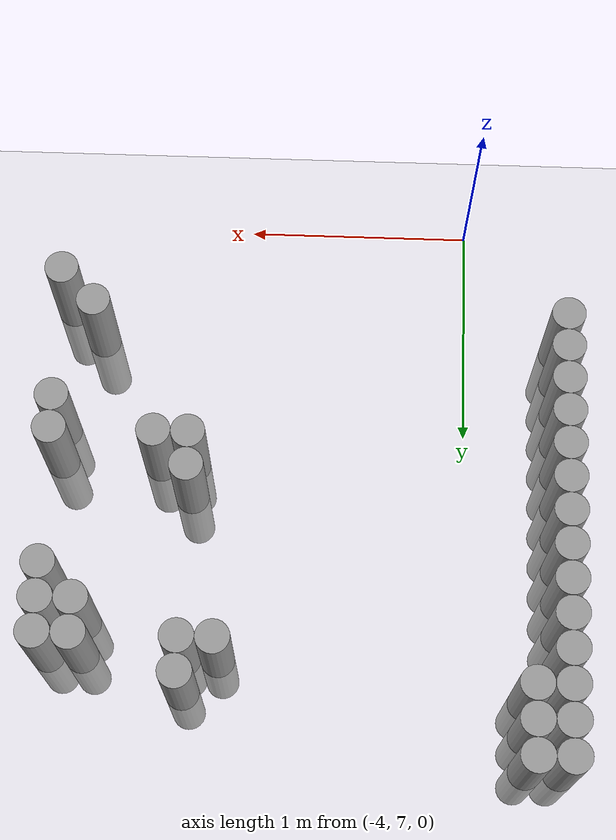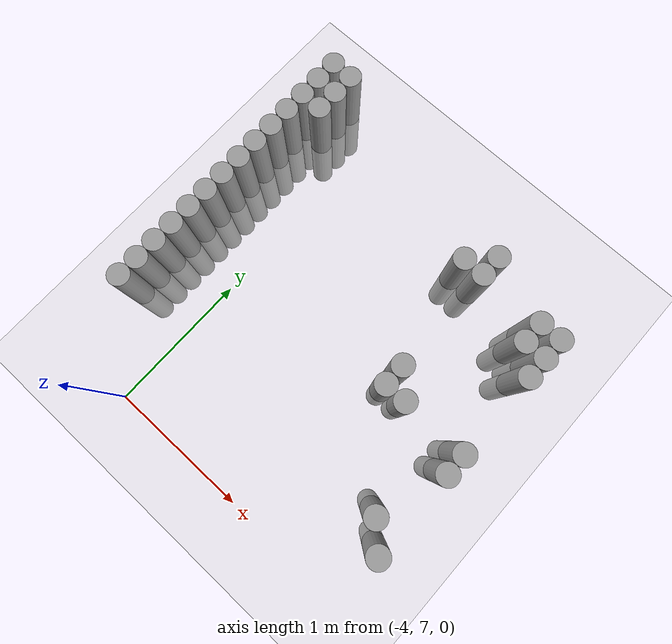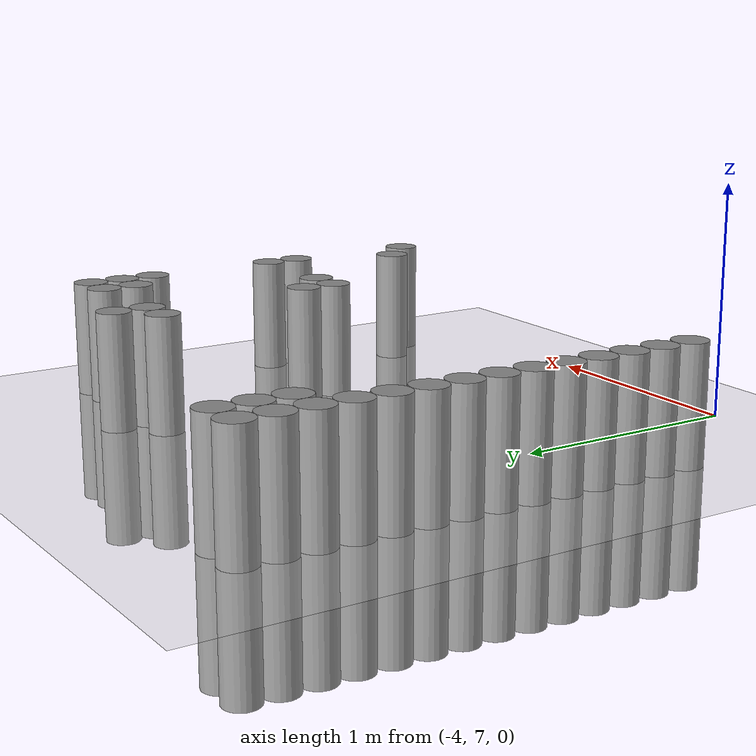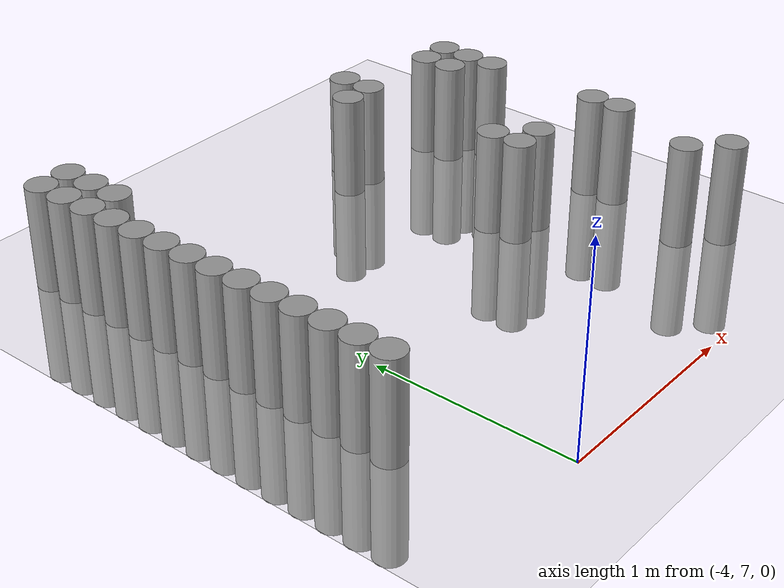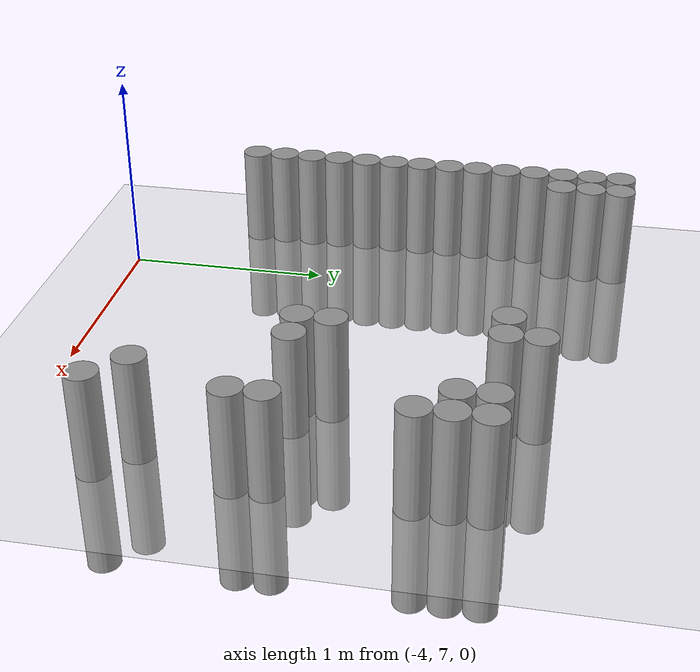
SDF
<sdf version="1.6">
 <world name="default">
  <model name="ground_plane">
   <static>1</static>
   <static>1</static>
   <link name="link">
    <collision name="collision">
     <geometry><plane><normal>0 0 1</normal><size>100 100</size></plane></geometry>
     <surface><friction><ode><mu>100</mu><mu2>50</mu2></ode></friction></surface>
    </collision>
    <visual name="visual">
     <cast_shadows>0</cast_shadows>
     <geometry><plane><normal>0 0 1</normal><size>100 100</size></plane></geometry>
     <material>
      <script><uri>file://media/materials/scripts/gazebo.material</uri><name>Gazebo/Grey</name></script>
     </material>
    </visual>
   </link>
  </model>
  <model name="unit_cylinder_112">
   <static>1</static>
   <pose>-4.425000 7.575000 0.000000 0.000000 0.000000 0.000000</pose>
   <link name="link">
    <inertial>
     <mass>1</mass>
     <inertia><ixx>0.145833</ixx><ixy>0</ixy><ixz>0</ixz><iyy>0.145833</iyy><iyz>0</iyz><izz>0.125</izz></inertia>
    </inertial>
    <collision name="collision">
     <geometry><cylinder><radius>0.075000</radius><length>1</length></cylinder></geometry>
    </collision>
    <visual name="visual">
     <geometry><cylinder><radius>0.075000</radius><length>1</length></cylinder></geometry>
     <material>
      <script><name>Gazebo/Grey</name><uri>file://media/materials/scripts/gazebo.material</uri></script>
     </material>
    </visual>
   </link>
  </model>
  <model name="unit_cylinder_113">
   <static>1</static>
   <pose>-4.425000 7.725000 0.000000 0.000000 0.000000 0.000000</pose>
   <link name="link">
    <inertial>
     <mass>1</mass>
     <inertia><ixx>0.145833</ixx><ixy>0</ixy><ixz>0</ixz><iyy>0.145833</iyy><iyz>0</iyz><izz>0.125</izz></inertia>
    </inertial>
    <collision name="collision">
     <geometry><cylinder><radius>0.075000</radius><length>1</length></cylinder></geometry>
    </collision>
    <visual name="visual">
     <geometry><cylinder><radius>0.075000</radius><length>1</length></cylinder></geometry>
     <material>
      <script><name>Gazebo/Grey</name><uri>file://media/materials/scripts/gazebo.material</uri></script>
     </material>
    </visual>
   </link>
  </model>
  <model name="unit_cylinder_114">
   <static>1</static>
   <pose>-4.425000 7.875000 0.000000 0.000000 0.000000 0.000000</pose>
   <link name="link">
    <inertial>
     <mass>1</mass>
     <inertia><ixx>0.145833</ixx><ixy>0</ixy><ixz>0</ixz><iyy>0.145833</iyy><iyz>0</iyz><izz>0.125</izz></inertia>
    </inertial>
    <collision name="collision">
     <geometry><cylinder><radius>0.075000</radius><length>1</length></cylinder></geometry>
    </collision>
    <visual name="visual">
     <geometry><cylinder><radius>0.075000</radius><length>1</length></cylinder></geometry>
     <material>
      <script><name>Gazebo/Grey</name><uri>file://media/materials/scripts/gazebo.material</uri></script>
     </material>
    </visual>
   </link>
  </model>
  <model name="unit_cylinder_115">
   <static>1</static>
   <pose>-4.425000 8.025000 0.000000 0.000000 0.000000 0.000000</pose>
   <link name="link">
    <inertial>
     <mass>1</mass>
     <inertia><ixx>0.145833</ixx><ixy>0</ixy><ixz>0</ixz><iyy>0.145833</iyy><iyz>0</iyz><izz>0.125</izz></inertia>
    </inertial>
    <collision name="collision">
     <geometry><cylinder><radius>0.075000</radius><length>1</length></cylinder></geometry>
    </collision>
    <visual name="visual">
     <geometry><cylinder><radius>0.075000</radius><length>1</length></cylinder></geometry>
     <material>
      <script><name>Gazebo/Grey</name><uri>file://media/materials/scripts/gazebo.material</uri></script>
     </material>
    </visual>
   </link>
  </model>
  <model name="unit_cylinder_116">
   <static>1</static>
   <pose>-4.425000 8.175000 0.000000 0.000000 0.000000 0.000000</pose>
   <link name="link">
    <inertial>
     <mass>1</mass>
     <inertia><ixx>0.145833</ixx><ixy>0</ixy><ixz>0</ixz><iyy>0.145833</iyy><iyz>0</iyz><izz>0.125</izz></inertia>
    </inertial>
    <collision name="collision">
     <geometry><cylinder><radius>0.075000</radius><length>1</length></cylinder></geometry>
    </collision>
    <visual name="visual">
     <geometry><cylinder><radius>0.075000</radius><length>1</length></cylinder></geometry>
     <material>
      <script><name>Gazebo/Grey</name><uri>file://media/materials/scripts/gazebo.material</uri></script>
     </material>
    </visual>
   </link>
  </model>
  <model name="unit_cylinder_117">
   <static>1</static>
   <pose>-4.425000 8.325000 0.000000 0.000000 0.000000 0.000000</pose>
   <link name="link">
    <inertial>
     <mass>1</mass>
     <inertia><ixx>0.145833</ixx><ixy>0</ixy><ixz>0</ixz><iyy>0.145833</iyy><iyz>0</iyz><izz>0.125</izz></inertia>
    </inertial>
    <collision name="collision">
     <geometry><cylinder><radius>0.075000</radius><length>1</length></cylinder></geometry>
    </collision>
    <visual name="visual">
     <geometry><cylinder><radius>0.075000</radius><length>1</length></cylinder></geometry>
     <material>
      <script><name>Gazebo/Grey</name><uri>file://media/materials/scripts/gazebo.material</uri></script>
     </material>
    </visual>
   </link>
  </model>
  <model name="unit_cylinder_118">
   <static>1</static>
   <pose>-4.425000 8.475000 0.000000 0.000000 0.000000 0.000000</pose>
   <link name="link">
    <inertial>
     <mass>1</mass>
     <inertia><ixx>0.145833</ixx><ixy>0</ixy><ixz>0</ixz><iyy>0.145833</iyy><iyz>0</iyz><izz>0.125</izz></inertia>
    </inertial>
    <collision name="collision">
     <geometry><cylinder><radius>0.075000</radius><length>1</length></cylinder></geometry>
    </collision>
    <visual name="visual">
     <geometry><cylinder><radius>0.075000</radius><length>1</length></cylinder></geometry>
     <material>
      <script><name>Gazebo/Grey</name><uri>file://media/materials/scripts/gazebo.material</uri></script>
     </material>
    </visual>
   </link>
  </model>
  <model name="unit_cylinder_119">
   <static>1</static>
   <pose>-4.425000 8.625000 0.000000 0.000000 0.000000 0.000000</pose>
   <link name="link">
    <inertial>
     <mass>1</mass>
     <inertia><ixx>0.145833</ixx><ixy>0</ixy><ixz>0</ixz><iyy>0.145833</iyy><iyz>0</iyz><izz>0.125</izz></inertia>
    </inertial>
    <collision name="collision">
     <geometry><cylinder><radius>0.075000</radius><length>1</length></cylinder></geometry>
    </collision>
    <visual name="visual">
     <geometry><cylinder><radius>0.075000</radius><length>1</length></cylinder></geometry>
     <material>
      <script><name>Gazebo/Grey</name><uri>file://media/materials/scripts/gazebo.material</uri></script>
     </material>
    </visual>
   </link>
  </model>
  <model name="unit_cylinder_120">
   <static>1</static>
   <pose>-4.425000 8.775000 0.000000 0.000000 0.000000 0.000000</pose>
   <link name="link">
    <inertial>
     <mass>1</mass>
     <inertia><ixx>0.145833</ixx><ixy>0</ixy><ixz>0</ixz><iyy>0.145833</iyy><iyz>0</iyz><izz>0.125</izz></inertia>
    </inertial>
    <collision name="collision">
     <geometry><cylinder><radius>0.075000</radius><length>1</length></cylinder></geometry>
    </collision>
    <visual name="visual">
     <geometry><cylinder><radius>0.075000</radius><length>1</length></cylinder></geometry>
     <material>
      <script><name>Gazebo/Grey</name><uri>file://media/materials/scripts/gazebo.material</uri></script>
     </material>
    </visual>
   </link>
  </model>
  <model name="unit_cylinder_121">
   <static>1</static>
   <pose>-4.425000 8.925000 0.000000 0.000000 0.000000 0.000000</pose>
   <link name="link">
    <inertial>
     <mass>1</mass>
     <inertia><ixx>0.145833</ixx><ixy>0</ixy><ixz>0</ixz><iyy>0.145833</iyy><iyz>0</iyz><izz>0.125</izz></inertia>
    </inertial>
    <collision name="collision">
     <geometry><cylinder><radius>0.075000</radius><length>1</length></cylinder></geometry>
    </collision>
    <visual name="visual">
     <geometry><cylinder><radius>0.075000</radius><length>1</length></cylinder></geometry>
     <material>
      <script><name>Gazebo/Grey</name><uri>file://media/materials/scripts/gazebo.material</uri></script>
     </material>
    </visual>
   </link>
  </model>
  <model name="unit_cylinder_122">
   <static>1</static>
   <pose>-4.425000 9.075000 0.000000 0.000000 0.000000 0.000000</pose>
   <link name="link">
    <inertial>
     <mass>1</mass>
     <inertia><ixx>0.145833</ixx><ixy>0</ixy><ixz>0</ixz><iyy>0.145833</iyy><iyz>0</iyz><izz>0.125</izz></inertia>
    </inertial>
    <collision name="collision">
     <geometry><cylinder><radius>0.075000</radius><length>1</length></cylinder></geometry>
    </collision>
    <visual name="visual">
     <geometry><cylinder><radius>0.075000</radius><length>1</length></cylinder></geometry>
     <material>
      <script><name>Gazebo/Grey</name><uri>file://media/materials/scripts/gazebo.material</uri></script>
     </material>
    </visual>
   </link>
  </model>
  <model name="unit_cylinder_123">
   <static>1</static>
   <pose>-4.425000 9.225000 0.000000 0.000000 0.000000 0.000000</pose>
   <link name="link">
    <inertial>
     <mass>1</mass>
     <inertia><ixx>0.145833</ixx><ixy>0</ixy><ixz>0</ixz><iyy>0.145833</iyy><iyz>0</iyz><izz>0.125</izz></inertia>
    </inertial>
    <collision name="collision">
     <geometry><cylinder><radius>0.075000</radius><length>1</length></cylinder></geometry>
    </collision>
    <visual name="visual">
     <geometry><cylinder><radius>0.075000</radius><length>1</length></cylinder></geometry>
     <material>
      <script><name>Gazebo/Grey</name><uri>file://media/materials/scripts/gazebo.material</uri></script>
     </material>
    </visual>
   </link>
  </model>
  <model name="unit_cylinder_124">
   <static>1</static>
   <pose>-4.425000 9.375000 0.000000 0.000000 0.000000 0.000000</pose>
   <link name="link">
    <inertial>
     <mass>1</mass>
     <inertia><ixx>0.145833</ixx><ixy>0</ixy><ixz>0</ixz><iyy>0.145833</iyy><iyz>0</iyz><izz>0.125</izz></inertia>
    </inertial>
    <collision name="collision">
     <geometry><cylinder><radius>0.075000</radius><length>1</length></cylinder></geometry>
    </collision>
    <visual name="visual">
     <geometry><cylinder><radius>0.075000</radius><length>1</length></cylinder></geometry>
     <material>
      <script><name>Gazebo/Grey</name><uri>file://media/materials/scripts/gazebo.material</uri></script>
     </material>
    </visual>
   </link>
  </model>
  <model name="unit_cylinder_125">
   <static>1</static>
   <pose>-4.425000 9.525000 0.000000 0.000000 0.000000 0.000000</pose>
   <link name="link">
    <inertial>
     <mass>1</mass>
     <inertia><ixx>0.145833</ixx><ixy>0</ixy><ixz>0</ixz><iyy>0.145833</iyy><iyz>0</iyz><izz>0.125</izz></inertia>
    </inertial>
    <collision name="collision">
     <geometry><cylinder><radius>0.075000</radius><length>1</length></cylinder></geometry>
    </collision>
    <visual name="visual">
     <geometry><cylinder><radius>0.075000</radius><length>1</length></cylinder></geometry>
     <material>
      <script><name>Gazebo/Grey</name><uri>file://media/materials/scripts/gazebo.material</uri></script>
     </material>
    </visual>
   </link>
  </model>
  <model name="unit_cylinder_131">
   <static>1</static>
   <pose>-4.275000 9.225000 0.000000 0.000000 0.000000 0.000000</pose>
   <link name="link">
    <inertial>
     <mass>1</mass>
     <inertia><ixx>0.145833</ixx><ixy>0</ixy><ixz>0</ixz><iyy>0.145833</iyy><iyz>0</iyz><izz>0.125</izz></inertia>
    </inertial>
    <collision name="collision">
     <geometry><cylinder><radius>0.075000</radius><length>1</length></cylinder></geometry>
    </collision>
    <visual name="visual">
     <geometry><cylinder><radius>0.075000</radius><length>1</length></cylinder></geometry>
     <material>
      <script><name>Gazebo/Grey</name><uri>file://media/materials/scripts/gazebo.material</uri></script>
     </material>
    </visual>
   </link>
  </model>
  <model name="unit_cylinder_132">
   <static>1</static>
   <pose>-4.275000 9.375000 0.000000 0.000000 0.000000 0.000000</pose>
   <link name="link">
    <inertial>
     <mass>1</mass>
     <inertia><ixx>0.145833</ixx><ixy>0</ixy><ixz>0</ixz><iyy>0.145833</iyy><iyz>0</iyz><izz>0.125</izz></inertia>
    </inertial>
    <collision name="collision">
     <geometry><cylinder><radius>0.075000</radius><length>1</length></cylinder></geometry>
    </collision>
    <visual name="visual">
     <geometry><cylinder><radius>0.075000</radius><length>1</length></cylinder></geometry>
     <material>
      <script><name>Gazebo/Grey</name><uri>file://media/materials/scripts/gazebo.material</uri></script>
     </material>
    </visual>
   </link>
  </model>
  <model name="unit_cylinder_133">
   <static>1</static>
   <pose>-4.275000 9.525000 0.000000 0.000000 0.000000 0.000000</pose>
   <link name="link">
    <inertial>
     <mass>1</mass>
     <inertia><ixx>0.145833</ixx><ixy>0</ixy><ixz>0</ixz><iyy>0.145833</iyy><iyz>0</iyz><izz>0.125</izz></inertia>
    </inertial>
    <collision name="collision">
     <geometry><cylinder><radius>0.075000</radius><length>1</length></cylinder></geometry>
    </collision>
    <visual name="visual">
     <geometry><cylinder><radius>0.075000</radius><length>1</length></cylinder></geometry>
     <material>
      <script><name>Gazebo/Grey</name><uri>file://media/materials/scripts/gazebo.material</uri></script>
     </material>
    </visual>
   </link>
  </model>
  <model name="unit_cylinder_142">
   <static>1</static>
   <pose>-2.925000 9.075000 0.000000 0.000000 0.000000 0.000000</pose>
   <link name="link">
    <inertial>
     <mass>1</mass>
     <inertia><ixx>0.145833</ixx><ixy>0</ixy><ixz>0</ixz><iyy>0.145833</iyy><iyz>0</iyz><izz>0.125</izz></inertia>
    </inertial>
    <collision name="collision">
     <geometry><cylinder><radius>0.075000</radius><length>1</length></cylinder></geometry>
    </collision>
    <visual name="visual">
     <geometry><cylinder><radius>0.075000</radius><length>1</length></cylinder></geometry>
     <material>
      <script><name>Gazebo/Grey</name><uri>file://media/materials/scripts/gazebo.material</uri></script>
     </material>
    </visual>
   </link>
  </model>
  <model name="unit_cylinder_143">
   <static>1</static>
   <pose>-2.775000 8.175000 0.000000 0.000000 0.000000 0.000000</pose>
   <link name="link">
    <inertial>
     <mass>1</mass>
     <inertia><ixx>0.145833</ixx><ixy>0</ixy><ixz>0</ixz><iyy>0.145833</iyy><iyz>0</iyz><izz>0.125</izz></inertia>
    </inertial>
    <collision name="collision">
     <geometry><cylinder><radius>0.075000</radius><length>1</length></cylinder></geometry>
    </collision>
    <visual name="visual">
     <geometry><cylinder><radius>0.075000</radius><length>1</length></cylinder></geometry>
     <material>
      <script><name>Gazebo/Grey</name><uri>file://media/materials/scripts/gazebo.material</uri></script>
     </material>
    </visual>
   </link>
  </model>
  <model name="unit_cylinder_144">
   <static>1</static>
   <pose>-2.775000 8.325000 0.000000 0.000000 0.000000 0.000000</pose>
   <link name="link">
    <inertial>
     <mass>1</mass>
     <inertia><ixx>0.145833</ixx><ixy>0</ixy><ixz>0</ixz><iyy>0.145833</iyy><iyz>0</iyz><izz>0.125</izz></inertia>
    </inertial>
    <collision name="collision">
     <geometry><cylinder><radius>0.075000</radius><length>1</length></cylinder></geometry>
    </collision>
    <visual name="visual">
     <geometry><cylinder><radius>0.075000</radius><length>1</length></cylinder></geometry>
     <material>
      <script><name>Gazebo/Grey</name><uri>file://media/materials/scripts/gazebo.material</uri></script>
     </material>
    </visual>
   </link>
  </model>
  <model name="unit_cylinder_145">
   <static>1</static>
   <pose>-2.775000 9.075000 0.000000 0.000000 0.000000 0.000000</pose>
   <link name="link">
    <inertial>
     <mass>1</mass>
     <inertia><ixx>0.145833</ixx><ixy>0</ixy><ixz>0</ixz><iyy>0.145833</iyy><iyz>0</iyz><izz>0.125</izz></inertia>
    </inertial>
    <collision name="collision">
     <geometry><cylinder><radius>0.075000</radius><length>1</length></cylinder></geometry>
    </collision>
    <visual name="visual">
     <geometry><cylinder><radius>0.075000</radius><length>1</length></cylinder></geometry>
     <material>
      <script><name>Gazebo/Grey</name><uri>file://media/materials/scripts/gazebo.material</uri></script>
     </material>
    </visual>
   </link>
  </model>
  <model name="unit_cylinder_146">
   <static>1</static>
   <pose>-2.775000 9.225000 0.000000 0.000000 0.000000 0.000000</pose>
   <link name="link">
    <inertial>
     <mass>1</mass>
     <inertia><ixx>0.145833</ixx><ixy>0</ixy><ixz>0</ixz><iyy>0.145833</iyy><iyz>0</iyz><izz>0.125</izz></inertia>
    </inertial>
    <collision name="collision">
     <geometry><cylinder><radius>0.075000</radius><length>1</length></cylinder></geometry>
    </collision>
    <visual name="visual">
     <geometry><cylinder><radius>0.075000</radius><length>1</length></cylinder></geometry>
     <material>
      <script><name>Gazebo/Grey</name><uri>file://media/materials/scripts/gazebo.material</uri></script>
     </material>
    </visual>
   </link>
  </model>
  <model name="unit_cylinder_150">
   <static>1</static>
   <pose>-2.625000 8.175000 0.000000 0.000000 0.000000 0.000000</pose>
   <link name="link">
    <inertial>
     <mass>1</mass>
     <inertia><ixx>0.145833</ixx><ixy>0</ixy><ixz>0</ixz><iyy>0.145833</iyy><iyz>0</iyz><izz>0.125</izz></inertia>
    </inertial>
    <collision name="collision">
     <geometry><cylinder><radius>0.075000</radius><length>1</length></cylinder></geometry>
    </collision>
    <visual name="visual">
     <geometry><cylinder><radius>0.075000</radius><length>1</length></cylinder></geometry>
     <material>
      <script><name>Gazebo/Grey</name><uri>file://media/materials/scripts/gazebo.material</uri></script>
     </material>
    </visual>
   </link>
  </model>
  <model name="unit_cylinder_163">
   <static>1</static>
   <pose>-2.325000 7.575000 0.000000 0.000000 0.000000 0.000000</pose>
   <link name="link">
    <inertial>
     <mass>1</mass>
     <inertia><ixx>0.145833</ixx><ixy>0</ixy><ixz>0</ixz><iyy>0.145833</iyy><iyz>0</iyz><izz>0.125</izz></inertia>
    </inertial>
    <collision name="collision">
     <geometry><cylinder><radius>0.075000</radius><length>1</length></cylinder></geometry>
    </collision>
    <visual name="visual">
     <geometry><cylinder><radius>0.075000</radius><length>1</length></cylinder></geometry>
     <material>
      <script><name>Gazebo/Grey</name><uri>file://media/materials/scripts/gazebo.material</uri></script>
     </material>
    </visual>
   </link>
  </model>
  <model name="unit_cylinder_164">
   <static>1</static>
   <pose>-2.325000 8.925000 0.000000 0.000000 0.000000 0.000000</pose>
   <link name="link">
    <inertial>
     <mass>1</mass>
     <inertia><ixx>0.145833</ixx><ixy>0</ixy><ixz>0</ixz><iyy>0.145833</iyy><iyz>0</iyz><izz>0.125</izz></inertia>
    </inertial>
    <collision name="collision">
     <geometry><cylinder><radius>0.075000</radius><length>1</length></cylinder></geometry>
    </collision>
    <visual name="visual">
     <geometry><cylinder><radius>0.075000</radius><length>1</length></cylinder></geometry>
     <material>
      <script><name>Gazebo/Grey</name><uri>file://media/materials/scripts/gazebo.material</uri></script>
     </material>
    </visual>
   </link>
  </model>
  <model name="unit_cylinder_165">
   <static>1</static>
   <pose>-2.325000 9.075000 0.000000 0.000000 0.000000 0.000000</pose>
   <link name="link">
    <inertial>
     <mass>1</mass>
     <inertia><ixx>0.145833</ixx><ixy>0</ixy><ixz>0</ixz><iyy>0.145833</iyy><iyz>0</iyz><izz>0.125</izz></inertia>
    </inertial>
    <collision name="collision">
     <geometry><cylinder><radius>0.075000</radius><length>1</length></cylinder></geometry>
    </collision>
    <visual name="visual">
     <geometry><cylinder><radius>0.075000</radius><length>1</length></cylinder></geometry>
     <material>
      <script><name>Gazebo/Grey</name><uri>file://media/materials/scripts/gazebo.material</uri></script>
     </material>
    </visual>
   </link>
  </model>
  <model name="unit_cylinder_168">
   <static>1</static>
   <pose>-2.175000 7.425000 0.000000 0.000000 0.000000 0.000000</pose>
   <link name="link">
    <inertial>
     <mass>1</mass>
     <inertia><ixx>0.145833</ixx><ixy>0</ixy><ixz>0</ixz><iyy>0.145833</iyy><iyz>0</iyz><izz>0.125</izz></inertia>
    </inertial>
    <collision name="collision">
     <geometry><cylinder><radius>0.075000</radius><length>1</length></cylinder></geometry>
    </collision>
    <visual name="visual">
     <geometry><cylinder><radius>0.075000</radius><length>1</length></cylinder></geometry>
     <material>
      <script><name>Gazebo/Grey</name><uri>file://media/materials/scripts/gazebo.material</uri></script>
     </material>
    </visual>
   </link>
  </model>
  <model name="unit_cylinder_169">
   <static>1</static>
   <pose>-2.175000 8.025000 0.000000 0.000000 0.000000 0.000000</pose>
   <link name="link">
    <inertial>
     <mass>1</mass>
     <inertia><ixx>0.145833</ixx><ixy>0</ixy><ixz>0</ixz><iyy>0.145833</iyy><iyz>0</iyz><izz>0.125</izz></inertia>
    </inertial>
    <collision name="collision">
     <geometry><cylinder><radius>0.075000</radius><length>1</length></cylinder></geometry>
    </collision>
    <visual name="visual">
     <geometry><cylinder><radius>0.075000</radius><length>1</length></cylinder></geometry>
     <material>
      <script><name>Gazebo/Grey</name><uri>file://media/materials/scripts/gazebo.material</uri></script>
     </material>
    </visual>
   </link>
  </model>
  <model name="unit_cylinder_170">
   <static>1</static>
   <pose>-2.175000 8.175000 0.000000 0.000000 0.000000 0.000000</pose>
   <link name="link">
    <inertial>
     <mass>1</mass>
     <inertia><ixx>0.145833</ixx><ixy>0</ixy><ixz>0</ixz><iyy>0.145833</iyy><iyz>0</iyz><izz>0.125</izz></inertia>
    </inertial>
    <collision name="collision">
     <geometry><cylinder><radius>0.075000</radius><length>1</length></cylinder></geometry>
    </collision>
    <visual name="visual">
     <geometry><cylinder><radius>0.075000</radius><length>1</length></cylinder></geometry>
     <material>
      <script><name>Gazebo/Grey</name><uri>file://media/materials/scripts/gazebo.material</uri></script>
     </material>
    </visual>
   </link>
  </model>
  <model name="unit_cylinder_171">
   <static>1</static>
   <pose>-2.175000 8.775000 0.000000 0.000000 0.000000 0.000000</pose>
   <link name="link">
    <inertial>
     <mass>1</mass>
     <inertia><ixx>0.145833</ixx><ixy>0</ixy><ixz>0</ixz><iyy>0.145833</iyy><iyz>0</iyz><izz>0.125</izz></inertia>
    </inertial>
    <collision name="collision">
     <geometry><cylinder><radius>0.075000</radius><length>1</length></cylinder></geometry>
    </collision>
    <visual name="visual">
     <geometry><cylinder><radius>0.075000</radius><length>1</length></cylinder></geometry>
     <material>
      <script><name>Gazebo/Grey</name><uri>file://media/materials/scripts/gazebo.material</uri></script>
     </material>
    </visual>
   </link>
  </model>
  <model name="unit_cylinder_172">
   <static>1</static>
   <pose>-2.175000 8.925000 0.000000 0.000000 0.000000 0.000000</pose>
   <link name="link">
    <inertial>
     <mass>1</mass>
     <inertia><ixx>0.145833</ixx><ixy>0</ixy><ixz>0</ixz><iyy>0.145833</iyy><iyz>0</iyz><izz>0.125</izz></inertia>
    </inertial>
    <collision name="collision">
     <geometry><cylinder><radius>0.075000</radius><length>1</length></cylinder></geometry>
    </collision>
    <visual name="visual">
     <geometry><cylinder><radius>0.075000</radius><length>1</length></cylinder></geometry>
     <material>
      <script><name>Gazebo/Grey</name><uri>file://media/materials/scripts/gazebo.material</uri></script>
     </material>
    </visual>
   </link>
  </model>
  <model name="unit_cylinder_173">
   <static>1</static>
   <pose>-2.175000 9.075000 0.000000 0.000000 0.000000 0.000000</pose>
   <link name="link">
    <inertial>
     <mass>1</mass>
     <inertia><ixx>0.145833</ixx><ixy>0</ixy><ixz>0</ixz><iyy>0.145833</iyy><iyz>0</iyz><izz>0.125</izz></inertia>
    </inertial>
    <collision name="collision">
     <geometry><cylinder><radius>0.075000</radius><length>1</length></cylinder></geometry>
    </collision>
    <visual name="visual">
     <geometry><cylinder><radius>0.075000</radius><length>1</length></cylinder></geometry>
     <material>
      <script><name>Gazebo/Grey</name><uri>file://media/materials/scripts/gazebo.material</uri></script>
     </material>
    </visual>
   </link>
  </model>
 </world>
</sdf>
